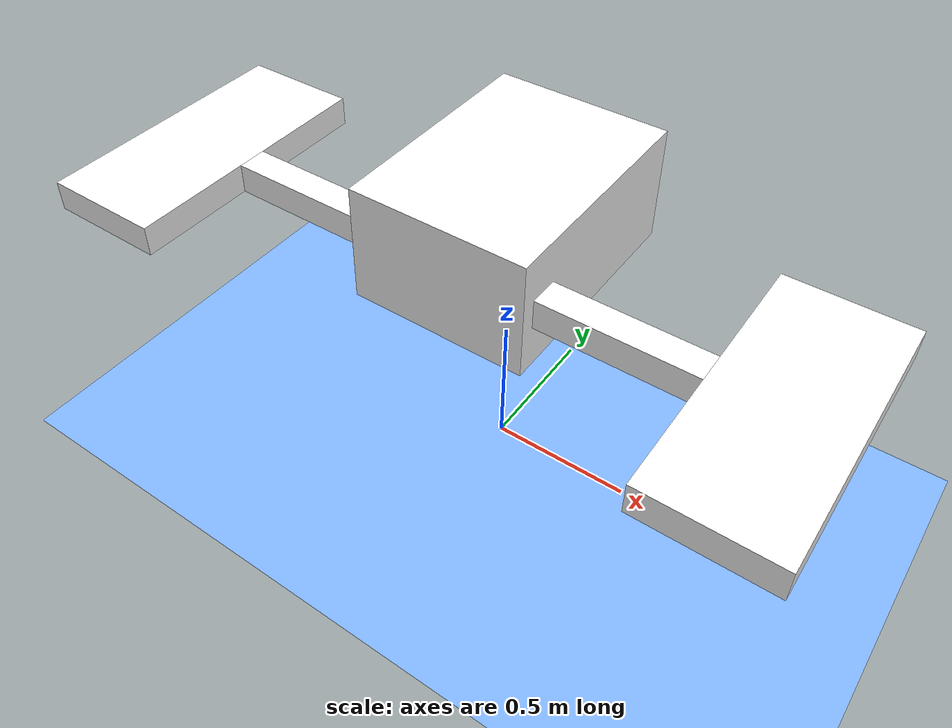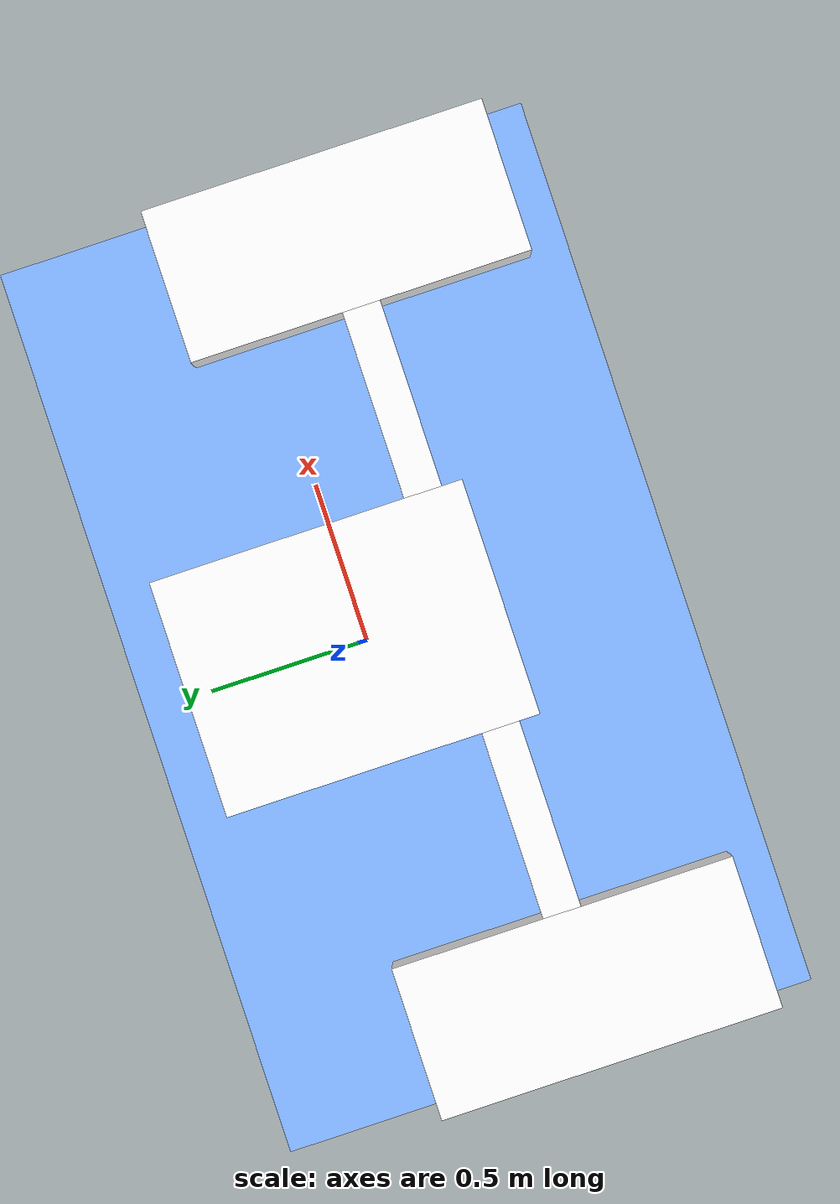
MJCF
<mujoco>
    <worldbody>
        <light diffuse=".5 .5 .5" pos="0 0 2" dir="0 -1 0"/>
        <geom type="plane" size="10 10 0.1" rgba="0.5 0.7 1 1"/>

        <body name="flappybird" pos="0 0 1" euler="0 0 0">
            <joint type="free" axis="0 0 0" pos="0 0 0" />
            <body name="body" pos="0 0 0" euler="0 0 0">
                <geom type="box" size=".3 .4 .2" rgba="1 1 1 1" mass="0.01" />
            </body>

            <body name="wing1" pos=".5 -.3 0" euler="0 -90 0">
                <joint name="joint1" type="hinge" axis="0 1 0" pos="0 0 .25" range="-45 45" />
                <geom type="box" size=".05 .05 .3" rgba="1 1 1 1" mass="1" />
                <body name="wing1_s0" pos="0 0 1.5" euler="0 0 0">
                    <joint name="j_wing1_s0" type="hinge" axis="0 1 0" pos="0 0 -.25" range="-10 10" />
                    <geom type="box" size=".05 .45 .2" rgba="1 1 1 1" mass="1" />
                </body>
            </body>

            <body name="wing2" pos="-.5 -.3 0" euler="0 90 0">
                <joint name="joint2" type="hinge" axis="0 1 0" pos="0 0 .25" range="-45 45" />
                <geom type="box" size=".05 .05 .3" rgba="1 1 1 1" mass="1" />
                <body name="wing2_s0" pos="0 0 1.5" euler="0 0 0">
                    <joint name="j_wing2_s0" type="hinge" axis="0 1 0" pos="0 0 -.25" range="-10 10" />
                    <geom type="box" size=".05 .45 .2" rgba="1 1 1 1" mass="1" />
                </body>
            </body>
        </body>
    </worldbody>

    <actuator>
        <motor joint="joint1" name="m1" gear="10" ctrllimited="true" ctrlrange="-5 5" />
        <motor joint="joint2" name="m2" gear="10" ctrllimited="true" ctrlrange="-5 5" />

        <motor joint="j_wing1_s0" name="m_wing1_s0" gear="10" ctrllimited="true" ctrlrange="-10 10" />
        <motor joint="j_wing2_s0" name="m_wing2_s0" gear="10" ctrllimited="true" ctrlrange="-10 10" />
</actuator>

</mujoco>
